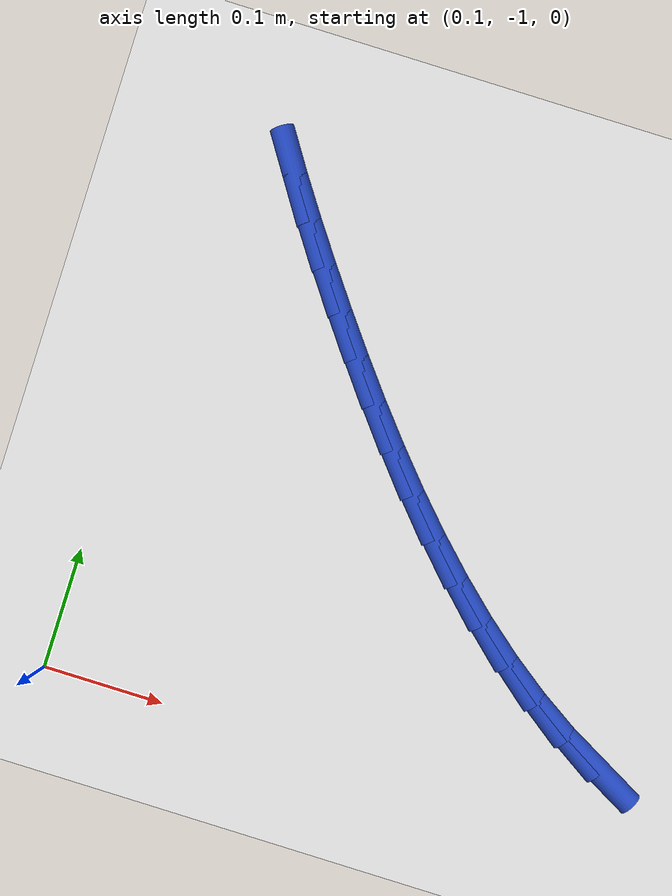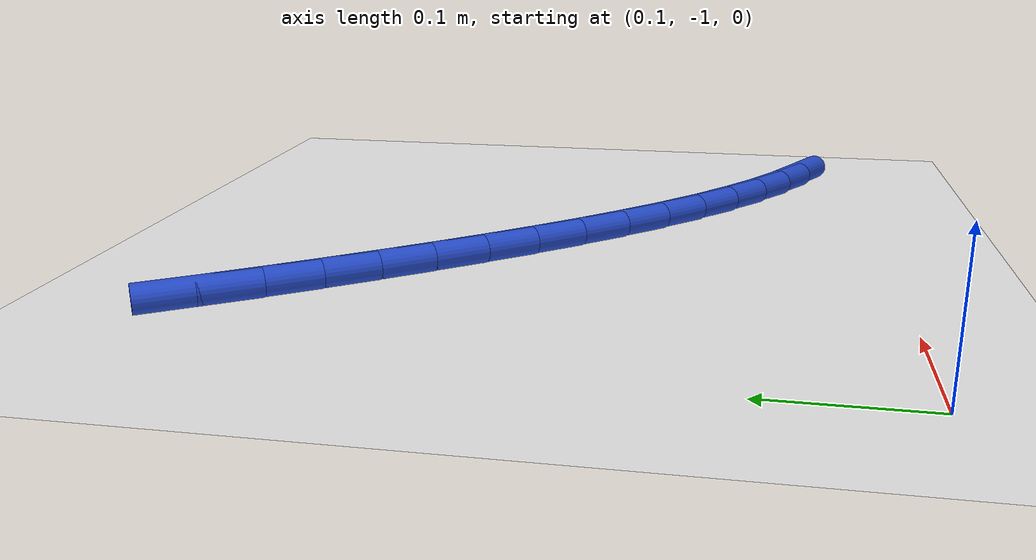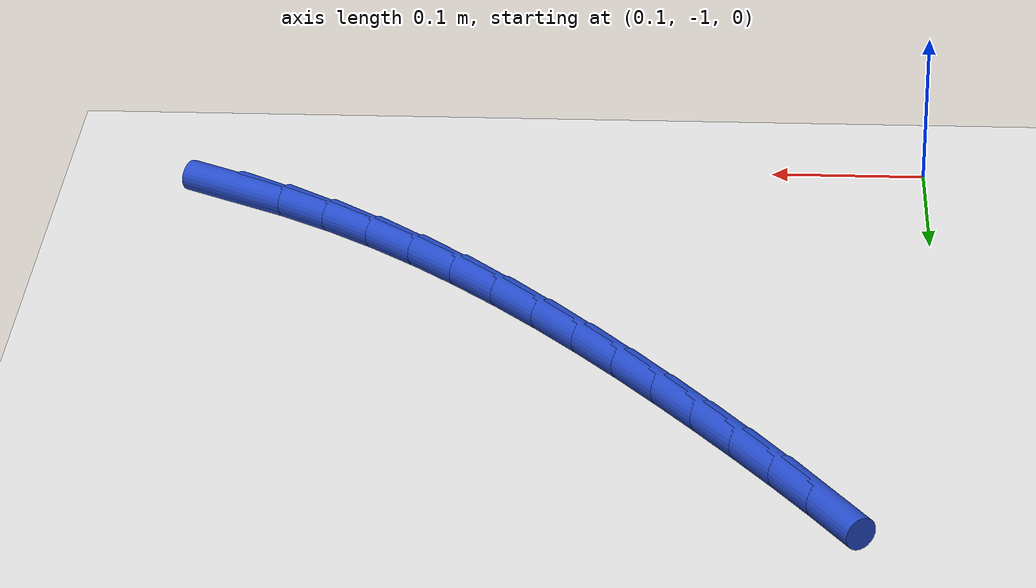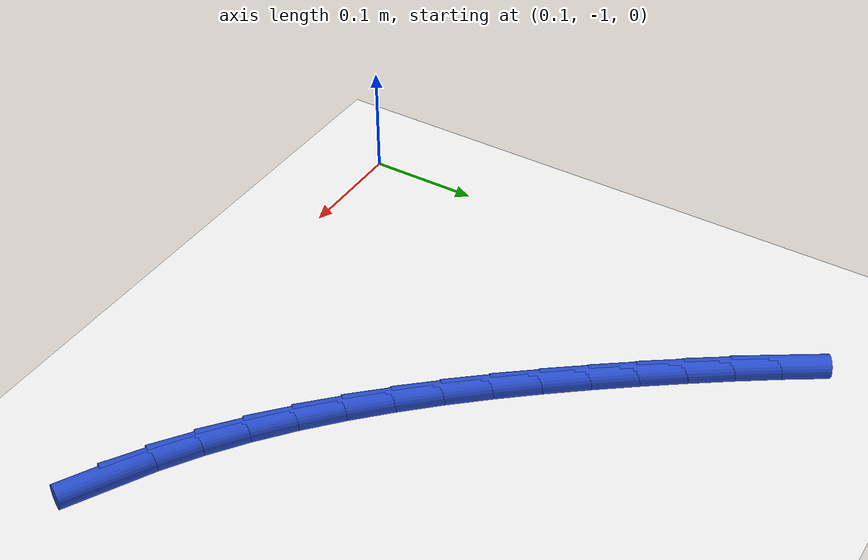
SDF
<sdf version="1.6">
 <world name="default">
  <model name="ground_plane">
   <static>1</static>
   <link name="link">
    <collision name="collision">
     <geometry><plane><normal>0 0 1</normal><size>100 100</size></plane></geometry>
     <surface><friction><ode><mu>100</mu><mu2>50</mu2></ode></friction></surface>
    </collision>
    <visual name="visual">
     <cast_shadows>0</cast_shadows>
     <geometry><plane><normal>0 0 1</normal><size>100 100</size></plane></geometry>
     <material>
      <script><uri>file://media/materials/scripts/gazebo.material</uri><name>Gazebo/WhiteGlow</name></script>
     </material>
    </visual>
   </link>
  </model>
  <model name="line">
   <link name="link_150">
    <pose>0.548572835086606 -0.9444705182253417 0.01 0 1.57 -0.5017494641695491</pose>
    <collision name="collision">
     <geometry><cylinder><radius>0.01</radius><length>0.08</length></cylinder></geometry>
    </collision>
    <visual name="visual">
     <material>
      <script><name>Gazebo/Blue</name><uri>file://media/materials/scripts/gazebo.material</uri></script>
     </material>
     <geometry><cylinder><radius>0.01</radius><length>0.08</length></cylinder></geometry>
    </visual>
   </link>
   <link name="link_151">
    <pose>0.5165121544298062 -0.9268827902341035 0.01 0 1.57 -0.5720491873591418</pose>
    <collision name="collision">
     <geometry><cylinder><radius>0.01</radius><length>0.08</length></cylinder></geometry>
    </collision>
    <visual name="visual">
     <material>
      <script><name>Gazebo/Blue</name><uri>file://media/materials/scripts/gazebo.material</uri></script>
     </material>
     <geometry><cylinder><radius>0.01</radius><length>0.08</length></cylinder></geometry>
    </visual>
   </link>
   <link name="link_152">
    <pose>0.48538479430101444 -0.9068410212195319 0.01 0 1.57 -0.6348175739213463</pose>
    <collision name="collision">
     <geometry><cylinder><radius>0.01</radius><length>0.08</length></cylinder></geometry>
    </collision>
    <visual name="visual">
     <material>
      <script><name>Gazebo/Blue</name><uri>file://media/materials/scripts/gazebo.material</uri></script>
     </material>
     <geometry><cylinder><radius>0.01</radius><length>0.08</length></cylinder></geometry>
    </visual>
   </link>
   <link name="link_153">
    <pose>0.4551687047867719 -0.8845862841281658 0.01 0 1.57 -0.6904482490924303</pose>
    <collision name="collision">
     <geometry><cylinder><radius>0.01</radius><length>0.08</length></cylinder></geometry>
    </collision>
    <visual name="visual">
     <material>
      <script><name>Gazebo/Blue</name><uri>file://media/materials/scripts/gazebo.material</uri></script>
     </material>
     <geometry><cylinder><radius>0.01</radius><length>0.08</length></cylinder></geometry>
    </visual>
   </link>
   <link name="link_154">
    <pose>0.4258418359736189 -0.8603596519065426 0.01 0 1.57 -0.7394479039754435</pose>
    <collision name="collision">
     <geometry><cylinder><radius>0.01</radius><length>0.08</length></cylinder></geometry>
    </collision>
    <visual name="visual">
     <material>
      <script><name>Gazebo/Blue</name><uri>file://media/materials/scripts/gazebo.material</uri></script>
     </material>
     <geometry><cylinder><radius>0.01</radius><length>0.08</length></cylinder></geometry>
    </visual>
   </link>
   <link name="link_155">
    <pose>0.397382137948098 -0.8344021975012025 0.01 0 1.57 -0.7823584325549807</pose>
    <collision name="collision">
     <geometry><cylinder><radius>0.01</radius><length>0.08</length></cylinder></geometry>
    </collision>
    <visual name="visual">
     <material>
      <script><name>Gazebo/Blue</name><uri>file://media/materials/scripts/gazebo.material</uri></script>
     </material>
     <geometry><cylinder><radius>0.01</radius><length>0.08</length></cylinder></geometry>
    </visual>
   </link>
   <link name="link_156">
    <pose>0.3697675607967496 -0.8069549938586831 0.01 0 1.57 -0.8197055379225383</pose>
    <collision name="collision">
     <geometry><cylinder><radius>0.01</radius><length>0.08</length></cylinder></geometry>
    </collision>
    <visual name="visual">
     <material>
      <script><name>Gazebo/Blue</name><uri>file://media/materials/scripts/gazebo.material</uri></script>
     </material>
     <geometry><cylinder><radius>0.01</radius><length>0.08</length></cylinder></geometry>
    </visual>
   </link>
   <link name="link_157">
    <pose>0.34297605460611497 -0.7782591139255233 0.01 0 1.57 -0.8519675231697558</pose>
    <collision name="collision">
     <geometry><cylinder><radius>0.01</radius><length>0.08</length></cylinder></geometry>
    </collision>
    <visual name="visual">
     <material>
      <script><name>Gazebo/Blue</name><uri>file://media/materials/scripts/gazebo.material</uri></script>
     </material>
     <geometry><cylinder><radius>0.01</radius><length>0.08</length></cylinder></geometry>
    </visual>
   </link>
   <link name="link_158">
    <pose>0.316985569462735 -0.7485556306482612 0.01 0 1.57 -0.8795577531374141</pose>
    <collision name="collision">
     <geometry><cylinder><radius>0.01</radius><length>0.08</length></cylinder></geometry>
    </collision>
    <visual name="visual">
     <material>
      <script><name>Gazebo/Blue</name><uri>file://media/materials/scripts/gazebo.material</uri></script>
     </material>
     <geometry><cylinder><radius>0.01</radius><length>0.08</length></cylinder></geometry>
    </visual>
   </link>
   <link name="link_159">
    <pose>0.29177405545315044 -0.7180856169734349 0.01 0 1.57 -0.9028153664261118</pose>
    <collision name="collision">
     <geometry><cylinder><radius>0.01</radius><length>0.08</length></cylinder></geometry>
    </collision>
    <visual name="visual">
     <material>
      <script><name>Gazebo/Blue</name><uri>file://media/materials/scripts/gazebo.material</uri></script>
     </material>
     <geometry><cylinder><radius>0.01</radius><length>0.08</length></cylinder></geometry>
    </visual>
   </link>
   <link name="link_160">
    <pose>0.26731946266390344 -0.6870901458475844 0.01 0 1.57 -0.9220001456195749</pose>
    <collision name="collision">
     <geometry><cylinder><radius>0.01</radius><length>0.08</length></cylinder></geometry>
    </collision>
    <visual name="visual">
     <material>
      <script><name>Gazebo/Blue</name><uri>file://media/materials/scripts/gazebo.material</uri></script>
     </material>
     <geometry><cylinder><radius>0.01</radius><length>0.08</length></cylinder></geometry>
    </visual>
   </link>
   <link name="link_161">
    <pose>0.24359974118153463 -0.6558102902172472 0.01 0 1.57 -0.9375246619445105</pose>
    <collision name="collision">
     <geometry><cylinder><radius>0.01</radius><length>0.08</length></cylinder></geometry>
    </collision>
    <visual name="visual">
     <material>
      <script><name>Gazebo/Blue</name><uri>file://media/materials/scripts/gazebo.material</uri></script>
     </material>
     <geometry><cylinder><radius>0.01</radius><length>0.08</length></cylinder></geometry>
    </visual>
   </link>
   <link name="link_162">
    <pose>0.2205961392919897 -0.6244761088569798 0.01 0 1.57 -0.9532476385439989</pose>
    <collision name="collision">
     <geometry><cylinder><radius>0.01</radius><length>0.08</length></cylinder></geometry>
    </collision>
    <visual name="visual">
     <material>
      <script><name>Gazebo/Blue</name><uri>file://media/materials/scripts/gazebo.material</uri></script>
     </material>
     <geometry><cylinder><radius>0.01</radius><length>0.08</length></cylinder></geometry>
    </visual>
   </link>
   <link name="link_163">
    <pose>0.19834241333405564 -0.593142312524578 0.01 0 1.57 -0.9722524492145458</pose>
    <collision name="collision">
     <geometry><cylinder><radius>0.01</radius><length>0.08</length></cylinder></geometry>
    </collision>
    <visual name="visual">
     <material>
      <script><name>Gazebo/Blue</name><uri>file://media/materials/scripts/gazebo.material</uri></script>
     </material>
     <geometry><cylinder><radius>0.01</radius><length>0.08</length></cylinder></geometry>
    </visual>
   </link>
   <link name="link_164">
    <pose>0.1769144186175518 -0.5617230245692673 0.01 0 1.57 -0.9946719946803384</pose>
    <collision name="collision">
     <geometry><cylinder><radius>0.01</radius><length>0.08</length></cylinder></geometry>
    </collision>
    <visual name="visual">
     <material>
      <script><name>Gazebo/Blue</name><uri>file://media/materials/scripts/gazebo.material</uri></script>
     </material>
     <geometry><cylinder><radius>0.01</radius><length>0.08</length></cylinder></geometry>
    </visual>
   </link>
  </model>
 </world>
</sdf>
